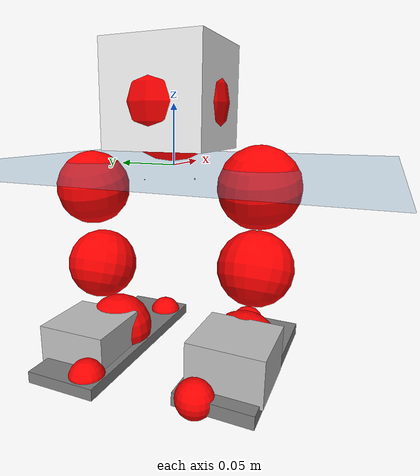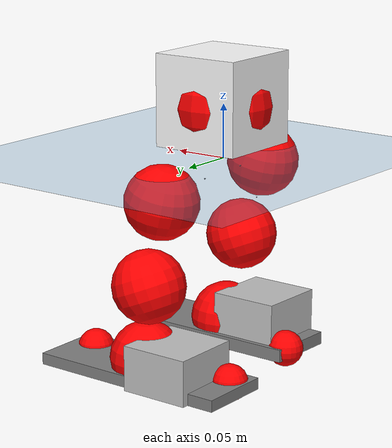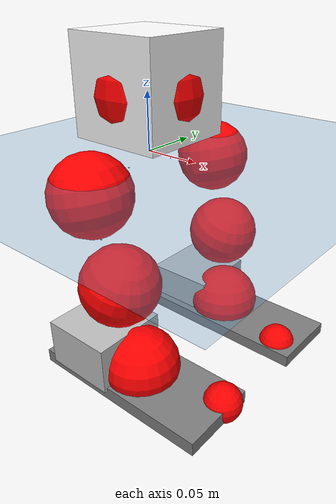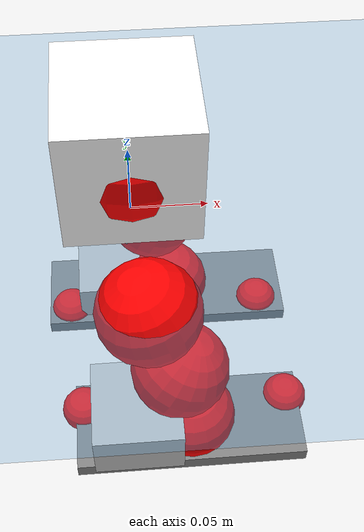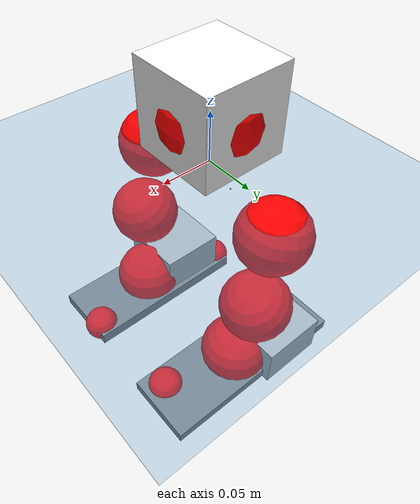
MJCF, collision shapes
<mujoco model="pi_12dof_release_v1">
  <compiler angle="radian" assetdir="assets" balanceinertia="true" inertiafromgeom="false"/>

  <option timestep="0.005" density="1.2" viscosity="2e-05"/>

  <size nkey="1"/>

  <visual>
    <quality shadowsize="8192"/>
    <map shadowclip="0.5"/>
  </visual>

  <default>
    <default class="/">
      <joint armature="0.01" damping="0.01" frictionloss="0.01"/>
      <geom contype="0" conaffinity="0" group="1" solref="-1000 -80"/>
      <site size="0.01 0.005 0.005" group="5"/>
      <general forcelimited="true" biastype="affine" gainprm="20" biasprm="0 -20 -0.5"/>
      <default class="foot">
        <geom size="0.0845 0.036 0.005" type="box" condim="6" group="4" priority="1" friction="0.9 0.2 0.2" solimp="0.015 1 0.005"/>
      </default>
      <default class="reward_collision_sphere">
        <geom group="5" rgba="1 0 0 1"/>
      </default>
    </default>
  </default>

  <asset>
    <texture type="skybox" colorspace="auto" name="//unnamed_texture_0" builtin="gradient" rgb1="0.95 0.95 0.95" rgb2="0.95 0.95 0.95" width="100" height="600"/>
    <texture type="2d" colorspace="auto" name="texplane" builtin="checker" rgb1="0.345 0.575 0.748" rgb2="0.345 0.575 0.748" markrgb="1 1 1" width="512" height="512"/>
    <material name="MatPlane" class="/" texture="texplane" texuniform="true" texrepeat="2 2" specular="0.9"/>
    <mesh name="baselink_1" class="/" file="baselink_1.STL"/>
    <mesh name="r_hip_pitch_link" class="/" file="r_hip_pitch_link.STL"/>
    <mesh name="r_hip_roll_link" class="/" file="r_hip_roll_link.STL"/>
    <mesh name="r_thigh_link" class="/" file="r_thigh_link.STL"/>
    <mesh name="r_calf_link" class="/" file="r_calf_link.STL"/>
    <mesh name="r_ankle_pitch_link" class="/" file="r_ankle_pitch_link.STL"/>
    <mesh name="r_ankle_roll_link" class="/" file="r_ankle_roll_link.STL"/>
    <mesh name="l_hip_pitch_link" class="/" file="l_hip_pitch_link.STL"/>
    <mesh name="l_hip_roll_link" class="/" file="l_hip_roll_link.STL"/>
    <mesh name="l_thigh_link" class="/" file="l_thigh_link.STL"/>
    <mesh name="l_calf_link" class="/" file="l_calf_link.STL"/>
    <mesh name="l_ankle_pitch_link" class="/" file="l_ankle_pitch_link.STL"/>
    <mesh name="l_ankle_roll_link" class="/" file="l_ankle_roll_link.STL"/>
  </asset>

  <worldbody>
    <geom name="floor" class="/" size="100 100 0.125" type="plane" group="0" material="MatPlane"/>
    <light name="toplight_shadow" class="/" pos="0 0 5" dir="0.0990148 0.0990148 -0.990148" type="directional" ambient="0.04 0.04 0.04" diffuse="0.55 0.55 0.55" specular="0.12 0.12 0.12"/>
    <light name="toplight_fill" class="/" pos="0 0 5" dir="0.0990148 0.0990148 -0.990148" type="directional" castshadow="false" ambient="0.04 0.04 0.04" diffuse="0.3 0.3 0.3" specular="0.08 0.08 0.08"/>
    <body name="trunk" pos="0.000202839 0.00142017 0.0117328" quat="0.999986 0.000257116 0.00283504 0.00454106">
      <inertial pos="0.00411837 -0.00905781 0.0233534" quat="0.727312 -0.00822239 0.0253423 0.68579" mass="1.21107" diaginertia="0.0171702 0.00310757 0.00017274"/>
      <joint name="//unnamed_joint_0" type="free"/>
      <geom name="//unnamed_geom_1" class="/" type="mesh" density="0" rgba="1 1 1 1" mesh="baselink_1"/>
      <geom name="//unnamed_geom_2" class="/" size="0.0423015 0.0423015 0.0423015" pos="0 0 0.0436382" type="box" rgba="1 1 1 1"/>
      <geom name="//unnamed_geom_3" class="reward_collision_sphere" size="0.0465317" pos="0 0 0.0381834"/>
      <site name="imu" class="/" pos="-0.00386433 -0.0292531 0.0416237" size="0.0084603"/>
      <camera name="track" class="/" pos="0 -1.66804 0" quat="0.707107 0.707107 0 0" mode="trackcom"/>
      <camera name="ego_camera" class="/" pos="0.0868946 0 0.0981859" quat="-0.5 -0.5 0.5 0.5"/>
      <body name="r_hip_pitch_link" pos="-0.00413235 -0.0221959 -0.0220193" quat="0.992215 -0.000119603 -0.124539 -0.000163789">
        <inertial pos="0.0112574 -0.0476319 0.0111676" quat="-0.000260172 0.743157 -0.0203367 0.668807" mass="0.239161" diaginertia="0.000219296 4.35231e-05 4.3228e-06"/>
        <joint name="r_hip_pitch_joint" class="/" pos="0 0 0" axis="-0.0026537 -0.999853 -0.0169174" stiffness="0.0164047" range="-1.7613 1.28431" armature="0.00862888" damping="0.0269012" frictionloss="0.00831299"/>
        <geom name="//unnamed_geom_4" class="/" type="mesh" density="0" rgba="0.75294 0.75294 0.75294 1" mesh="r_hip_pitch_link"/>
        <geom name="//unnamed_geom_5" class="/" size="0.000423015 0.000423015 0.000423015" type="box" rgba="0.75294 0.75294 0.75294 1"/>
        <body name="r_hip_roll_link" pos="0.00892611 -0.0514167 -0.0080819" quat="0.999999 -0.000189035 0.000893011 0.000918304">
          <inertial pos="0.00311105 0.0002423 -0.0352941" quat="0.698071 -0.0863032 -0.0826808 0.705984" mass="0.259075" diaginertia="0.000772055 0.000125507 7.70375e-06"/>
          <joint name="r_hip_roll_joint" class="/" pos="0 0 0" axis="-0.999291 0.0156032 0.0342622" stiffness="0.00548715" range="-0.0964946 0.472341" armature="0.0137227" damping="0.010072" frictionloss="0.00586217"/>
          <geom name="//unnamed_geom_6" class="/" type="mesh" density="0" rgba="0.75294 0.75294 0.75294 1" mesh="r_hip_roll_link"/>
          <geom name="//unnamed_geom_7" class="/" size="0.000423015 0.000423015 0.000423015" type="box" rgba="0.75294 0.75294 0.75294 1"/>
          <geom name="//unnamed_geom_8" class="reward_collision_sphere" size="0.0338412"/>
          <body name="r_thigh_link" pos="-0.00378354 0.00204251 -0.0369384" quat="0.999999 0.00135411 -0.00059721 -8.31239e-05">
            <inertial pos="0.0129706 0.0120322 -0.028489" quat="0.740411 0.672138 -0.00477624 0.000220539" mass="0.068295" diaginertia="0.00028956 3.77884e-05 2.69566e-06"/>
            <joint name="r_thigh_joint" class="/" pos="0 0 0" axis="0.00201138 -0.00180179 -0.999996" range="-0.204788 0.41066" armature="0.0130486" damping="0" frictionloss="0.00864715"/>
            <geom name="//unnamed_geom_9" class="/" type="mesh" density="0" rgba="0.75294 0.75294 0.75294 1" mesh="r_thigh_link"/>
            <geom name="//unnamed_geom_10" class="/" size="0.000423015 0.000423015 0.000423015" type="box" rgba="0.75294 0.75294 0.75294 1"/>
            <body name="r_calf_link" pos="0.00547938 0.00317374 -0.0400043" quat="0.94902 0.0026055 0.315188 -0.00335507">
              <inertial pos="0.00312298 3.4546e-05 -0.0353609" quat="0.998231 0.00399251 -0.0591848 0.003921" mass="0.43197" diaginertia="0.00752329 0.00142634 8.68698e-06"/>
              <joint name="r_calf_joint" class="/" pos="0 0 0" axis="0.00674089 -0.999967 0.00461182" stiffness="0.0117654" range="-1.67788 0.54433" armature="0.00836537" damping="0.0221582" frictionloss="0.00878089"/>
              <geom name="//unnamed_geom_11" class="/" type="mesh" density="0" rgba="0.75294 0.75294 0.75294 1" mesh="r_calf_link"/>
              <geom name="//unnamed_geom_12" class="/" size="0.000423015 0.000423015 0.000423015" type="box" rgba="0.75294 0.75294 0.75294 1"/>
              <geom name="//unnamed_geom_13" class="reward_collision_sphere" size="0.0338412"/>
              <body name="r_ankle_pitch_link" pos="-0.000986072 0.00615958 -0.0779844" quat="0.980082 0.00202008 -0.198584 0.000472188">
                <inertial pos="0.00997309 0.00381247 0.00260852" quat="0.00355474 0.705593 0.00779478 0.708565" mass="0.095198" diaginertia="0.000650597 9.87674e-05 5.46058e-06"/>
                <joint name="r_ankle_pitch_joint" class="/" pos="0 0 0" axis="0.00940302 -0.999473 -0.0310654" range="-1.19021 0.509005" armature="0.00995528" damping="0" frictionloss="0.00834253"/>
                <geom name="//unnamed_geom_14" class="/" type="mesh" density="0" rgba="0.75294 0.75294 0.75294 1" mesh="r_ankle_pitch_link"/>
                <geom name="//unnamed_geom_15" class="/" size="0.0329952 0.0338412 0.0211508" type="box" rgba="0.75294 0.75294 0.75294 1"/>
                <body name="r_ankle_roll_link" pos="0.0985417 0.0039437 6.70694e-05" quat="1 0.000372545 -0.000279455 0.000284443">
                  <inertial pos="-0.0260219 0.0105605 -0.0164982" quat="0.540559 0.427869 0.488188 0.535161" mass="0.356655" diaginertia="0.00263458 0.000413458 1.67243e-05"/>
                  <joint name="r_ankle_roll_joint" class="/" pos="0 0 0" axis="-0.999954 -0.00936079 0.00216443" range="0.102537 0.0336135" armature="0.0126232" damping="0.0229375" frictionloss="0.0130484"/>
                  <geom name="//unnamed_geom_16" class="/" type="mesh" density="0" rgba="0.75294 0.75294 0.75294 1" mesh="r_ankle_roll_link"/>
                  <geom name="//unnamed_geom_17" class="/" type="mesh" rgba="0.75294 0.75294 0.75294 1" mesh="r_ankle_roll_link"/>
                  <geom name="right_foot" class="foot" size="0.0860674 0.0349558 0.00603833" pos="-0.0590883 0 -0.024001"/>
                  <geom name="//unnamed_geom_19" class="reward_collision_sphere" size="0.0338412" pos="-0.0579297 0 -0.0109095"/>
                  <geom name="//unnamed_geom_20" class="reward_collision_sphere" size="0.0169206" pos="0.0173789 0.0166804 -0.0218191"/>
                  <geom name="//unnamed_geom_21" class="reward_collision_sphere" size="0.0169206" pos="-0.139031 0.0166804 -0.0218191"/>
                  <site name="right_foot" class="foot" pos="-0.0590883 0 -0.024001" size="0.0084603"/>
                </body>
              </body>
            </body>
          </body>
        </body>
      </body>
      <body name="l_hip_pitch_link" pos="-0.000298397 0.0265441 -0.0254555" quat="0.992096 -0.000969503 -0.125478 0.000101405">
        <inertial pos="0.00337401 0.0555589 0.0116081" quat="-0.0304895 0.697062 0.0200265 0.716082" mass="0.251565" diaginertia="0.000304115 4.34143e-05 5.74974e-06"/>
        <joint name="l_hip_pitch_joint" class="/" pos="0 0 0" axis="-0.0387585 0.998872 0.027436" stiffness="0.0373496" range="-1.0172 1.85482" armature="0.00820061" damping="0.0455604" frictionloss="0.00626009"/>
        <geom name="//unnamed_geom_22" class="/" type="mesh" density="0" rgba="0.75294 0.75294 0.75294 1" mesh="l_hip_pitch_link"/>
        <geom name="//unnamed_geom_23" class="/" size="0.000423015 0.000423015 0.000423015" type="box" rgba="0.75294 0.75294 0.75294 1"/>
        <body name="l_hip_roll_link" pos="0.00149835 0.0568616 -0.0113829" quat="0.999993 0.000581077 -0.00108211 0.00364222">
          <inertial pos="-0.0148158 0.00787209 -0.0208842" quat="0.6991 -0.0752477 -0.0780807 0.706754" mass="0.193878" diaginertia="0.00050447 9.37719e-05 4.73645e-06"/>
          <joint name="l_hip_roll_joint" class="/" pos="0 0 0" axis="-1 0.000264628 0.000459889" stiffness="0.00999107" range="-0.500837 0.233313" armature="0.0112968" damping="0" frictionloss="0.00846479"/>
          <geom name="//unnamed_geom_24" class="/" type="mesh" density="0" rgba="0.75294 0.75294 0.75294 1" mesh="l_hip_roll_link"/>
          <geom name="//unnamed_geom_25" class="/" size="0.000423015 0.000423015 0.000423015" type="box" rgba="0.75294 0.75294 0.75294 1"/>
          <geom name="//unnamed_geom_26" class="reward_collision_sphere" size="0.0338412"/>
          <body name="l_thigh_link" pos="0.00619666 0.00143475 -0.0312664" quat="0.999991 -0.00262618 -0.00260789 -0.00195542">
            <inertial pos="0.0114089 -0.00817073 -0.0140093" quat="0.686958 0.725081 -0.0478935 0.00728622" mass="0.0757973" diaginertia="0.000287654 4.43713e-05 2.9046e-06"/>
            <joint name="l_thigh_joint" class="/" pos="0 0 0" axis="0.000247688 6.56783e-05 -1" stiffness="0.00588071" range="-0.634057 0.292049" armature="0.0095752" damping="0.0139386" frictionloss="0.00332522"/>
            <geom name="//unnamed_geom_27" class="/" type="mesh" density="0" rgba="0.75294 0.75294 0.75294 1" mesh="l_thigh_link"/>
            <geom name="//unnamed_geom_28" class="/" size="0.000423015 0.000423015 0.000423015" type="box" rgba="0.75294 0.75294 0.75294 1"/>
            <body name="l_calf_link" pos="-0.0128038 0.000875241 -0.0483145" quat="0.94764 -2.08924e-05 0.319341 -0.000154008">
              <inertial pos="0.00906438 0.00920582 -0.0433886" quat="0.99878 -0.027006 -0.0399311 -0.0107469" mass="0.488577" diaginertia="0.00540817 0.00122886 6.72147e-06"/>
              <joint name="l_calf_joint" class="/" pos="0 0 0" axis="-0.00792542 0.999645 -0.0254209" stiffness="0.044539" range="-0.456929 1.44041" armature="0.00783558" damping="0.0398646" frictionloss="0.00566244"/>
              <geom name="//unnamed_geom_29" class="/" type="mesh" density="0" rgba="0.75294 0.75294 0.75294 1" mesh="l_calf_link"/>
              <geom name="//unnamed_geom_30" class="/" size="0.000423015 0.000423015 0.000423015" type="box" rgba="0.75294 0.75294 0.75294 1"/>
              <geom name="//unnamed_geom_31" class="reward_collision_sphere" size="0.0338412"/>
              <body name="l_ankle_pitch_link" pos="-0.000108261 -0.00230519 -0.074897" quat="0.980096 2.28385e-05 -0.198525 -3.37473e-05">
                <inertial pos="0.00154115 0.00452367 0.00998199" quat="-0.021685 0.705086 0.0299661 0.708157" mass="0.126715" diaginertia="0.00058358 9.04247e-05 5.85937e-06"/>
                <joint name="l_ankle_pitch_joint" class="/" pos="0 0 0" axis="-0.00186173 0.999998 -0.00046404" range="-0.370158 1.33078" armature="0.0104213" damping="0.0677326" frictionloss="0.0120365"/>
                <geom name="//unnamed_geom_32" class="/" type="mesh" density="0" rgba="0.75294 0.75294 0.75294 1" mesh="l_ankle_pitch_link"/>
                <geom name="//unnamed_geom_33" class="/" size="0.0329952 0.0338412 0.0211508" type="box" rgba="0.75294 0.75294 0.75294 1"/>
                <body name="l_ankle_roll_link" pos="0.0980037 -0.00805236 0.00777832" quat="0.999979 -0.00270664 0.00191047 -0.00552365">
                  <inertial pos="-0.0306106 -0.00136654 -0.00934109" quat="0.53158 0.441331 0.411069 0.594704" mass="0.293024" diaginertia="0.00219105 0.000359358 1.43347e-05"/>
                  <joint name="l_ankle_roll_joint" class="/" pos="0 0 0" axis="-0.999988 0.00433432 -0.00206363" stiffness="0.00512953" range="-0.160833 0.407043" armature="0.00830911" damping="0.0423807" frictionloss="0.0104719"/>
                  <geom name="//unnamed_geom_34" class="/" type="mesh" density="0" rgba="0.75294 0.75294 0.75294 1" mesh="l_ankle_roll_link"/>
                  <geom name="//unnamed_geom_35" class="/" type="mesh" rgba="0.75294 0.75294 0.75294 1" mesh="l_ankle_roll_link"/>
                  <geom name="left_foot" class="foot" size="0.0984242 0.0341882 0.00542448" pos="-0.0590883 0 -0.024001"/>
                  <geom name="//unnamed_geom_37" class="reward_collision_sphere" size="0.0338412" pos="-0.0579297 0 -0.0109095"/>
                  <geom name="//unnamed_geom_38" class="reward_collision_sphere" size="0.0169206" pos="0.0173789 -0.0166804 -0.0218191"/>
                  <geom name="//unnamed_geom_39" class="reward_collision_sphere" size="0.0169206" pos="-0.139031 -0.0166804 -0.0218191"/>
                  <site name="left_foot" class="foot" pos="-0.0590883 0 -0.024001" size="0.0084603"/>
                </body>
              </body>
            </body>
          </body>
        </body>
      </body>
    </body>
  </worldbody>

  <contact>
    <pair class="/" geom1="floor" geom2="right_foot" name="//unnamed_contact_1"/>
    <pair class="/" geom1="floor" geom2="left_foot" name="//unnamed_contact_0"/>
  </contact>

  <actuator>
    <general name="r_hip_pitch_joint" class="/" joint="r_hip_pitch_joint" forcerange="-11.4042 11.4042" gainprm="22.3239" biasprm="0 -22.3239 -0.530881"/>
    <general name="r_hip_roll_joint" class="/" joint="r_hip_roll_joint" forcerange="-26.0046 26.0046" gainprm="22.3239" biasprm="0 -22.3239 -0.530881"/>
    <general name="r_thigh_joint" class="/" joint="r_thigh_joint" forcerange="-16.8876 16.8876" gainprm="22.3239" biasprm="0 -22.3239 -0.530881"/>
    <general name="r_calf_joint" class="/" joint="r_calf_joint" forcerange="-9.2184 9.2184" gainprm="22.3239" biasprm="0 -22.3239 -0.530881"/>
    <general name="r_ankle_pitch_joint" class="/" joint="r_ankle_pitch_joint" forcerange="-20.4963 20.4963" gainprm="22.3239" biasprm="0 -22.3239 -0.530881"/>
    <general name="r_ankle_roll_joint" class="/" joint="r_ankle_roll_joint" forcerange="-25.9033 25.9033" gainprm="22.3239" biasprm="0 -22.3239 -0.530881"/>
    <general name="l_hip_pitch_joint" class="/" joint="l_hip_pitch_joint" forcerange="-16.9764 16.9764" gainprm="22.3239" biasprm="0 -22.3239 -0.530881"/>
    <general name="l_hip_roll_joint" class="/" joint="l_hip_roll_joint" forcerange="-17.3442 17.3442" gainprm="22.3239" biasprm="0 -22.3239 -0.530881"/>
    <general name="l_thigh_joint" class="/" joint="l_thigh_joint" forcerange="-13.9926 13.9926" gainprm="22.3239" biasprm="0 -22.3239 -0.530881"/>
    <general name="l_calf_joint" class="/" joint="l_calf_joint" forcerange="-18.0209 18.0209" gainprm="22.3239" biasprm="0 -22.3239 -0.530881"/>
    <general name="l_ankle_pitch_joint" class="/" joint="l_ankle_pitch_joint" forcerange="-14.1865 14.1865" gainprm="22.3239" biasprm="0 -22.3239 -0.530881"/>
    <general name="l_ankle_roll_joint" class="/" joint="l_ankle_roll_joint" forcerange="-16.6251 16.6251" gainprm="22.3239" biasprm="0 -22.3239 -0.530881"/>
  </actuator>

  <sensor>
    <gyro site="imu" name="imu_angular_velocity"/>
    <velocimeter site="imu" name="imu_linear_velocity"/>
    <framelinvel objtype="site" objname="left_foot" name="left_foot_global_linear_velocity"/>
    <framelinvel objtype="site" objname="right_foot" name="right_foot_global_linear_velocity"/>
  </sensor>

  <keyframe>
    <key name="home" qpos="0 0 0.291 1 0 0 0 0.4 0 0 -0.8 0.4 0 -0.4 0 0 0.8 -0.4 0"/>
  </keyframe>
</mujoco>
